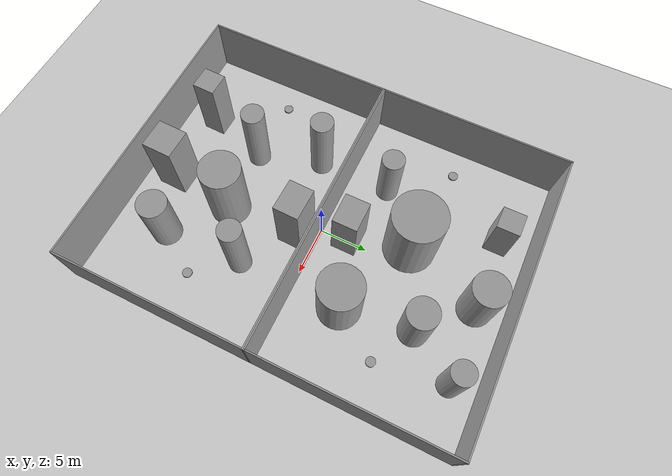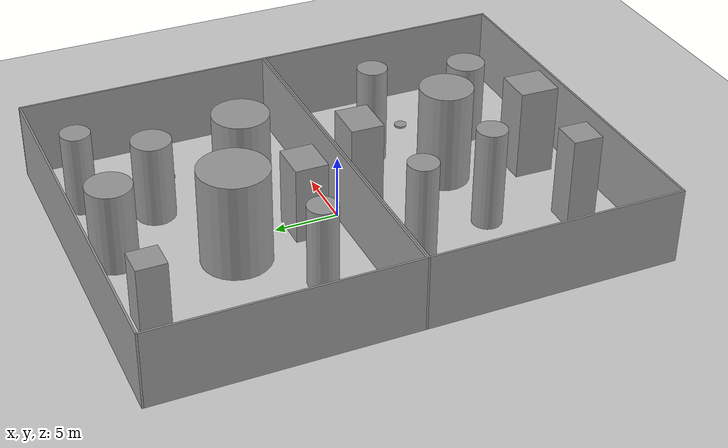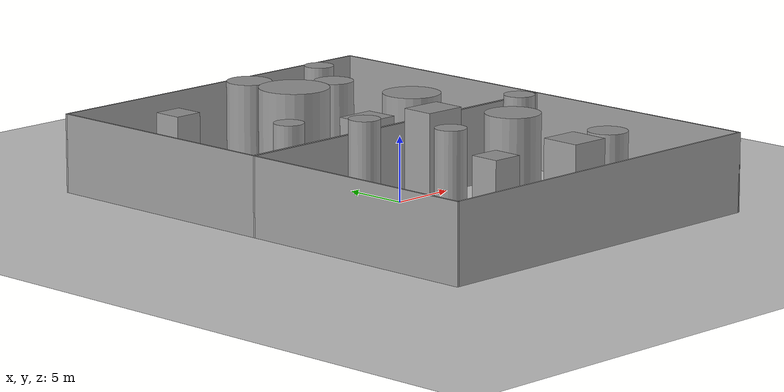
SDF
<sdf version="1.6">
 <world name="default">
  <light name="sun" type="directional">
   <pose>0 0 10 0 -0 0</pose>
   <diffuse>0.8 0.8 0.8 1</diffuse>
   <specular>0.2 0.2 0.2 1</specular>
   <attenuation>
    <range>1000</range>
    <constant>0.9</constant>
    <linear>0.01</linear>
    <quadratic>0.001</quadratic>
   </attenuation>
   <direction>-0.5 0.1 -0.9</direction>
  </light>
  <model name="ground_plane">
   <static>1</static>
   <link name="link">
    <collision name="collision">
     <geometry><plane><normal>0 0 1</normal><size>100 100</size></plane></geometry>
     <surface>
      <contact><collide_bitmask>65535</collide_bitmask></contact>
      <friction><ode><mu>100</mu><mu2>50</mu2></ode></friction>
     </surface>
    </collision>
    <visual name="visual">
     <cast_shadows>0</cast_shadows>
     <geometry><plane><normal>0 0 1</normal><size>100 100</size></plane></geometry>
     <material>
      <script><uri>file://media/materials/scripts/gazebo.material</uri><name>Gazebo/Grey</name></script>
     </material>
    </visual>
   </link>
  </model>
  <gravity>0 0 -9.8</gravity>
  <magnetic_field>6e-06 2.3e-05 -4.2e-05</magnetic_field>
  <atmosphere type="adiabatic"/>
  <physics name="default_physics" default="0" type="ode">
   <max_step_size>0.001</max_step_size>
   <real_time_factor>1</real_time_factor>
   <real_time_update_rate>1000</real_time_update_rate>
  </physics>
  <scene><ambient>0.4 0.4 0.4 1</ambient><background>0.7 0.7 0.7 1</background><shadows>1</shadows></scene>
  <spherical_coordinates>
   <surface_model>EARTH_WGS84</surface_model>
   <latitude_deg>0</latitude_deg>
   <longitude_deg>0</longitude_deg>
   <elevation>0</elevation>
   <heading_deg>0</heading_deg>
  </spherical_coordinates>
  <model name="simple_maze_2">
   <pose>0 10 0 0 -0 0</pose>
   <link name="Wall_10">
    <collision name="Wall_10_Collision">
     <geometry><box><size>30 0.15 6</size></box></geometry>
     <pose>0 0 3 0 -0 0</pose>
    </collision>
    <visual name="Wall_10_Visual">
     <pose>0 0 3 0 -0 0</pose>
     <geometry><box><size>30 0.15 6</size></box></geometry>
     <material>
      <script><uri>file://media/materials/scripts/gazebo.material</uri><name>Gazebo/Grey</name></script>
      <ambient>1 1 1 1</ambient>
     </material>
     <meta><layer>0</layer></meta>
    </visual>
    <pose>0 9.925 0 0 -0 3.14159</pose>
   </link>
   <link name="Wall_7">
    <collision name="Wall_7_Collision">
     <geometry><box><size>20 0.15 6</size></box></geometry>
     <pose>0 0 3 0 -0 0</pose>
    </collision>
    <visual name="Wall_7_Visual">
     <pose>0 0 3 0 -0 0</pose>
     <geometry><box><size>20 0.15 6</size></box></geometry>
     <material>
      <script><uri>file://media/materials/scripts/gazebo.material</uri><name>Gazebo/Grey</name></script>
      <ambient>1 1 1 1</ambient>
     </material>
     <meta><layer>0</layer></meta>
    </visual>
    <pose>-14.925 0 0 0 0 -1.5708</pose>
   </link>
   <link name="Wall_8">
    <collision name="Wall_8_Collision">
     <geometry><box><size>30 0.15 6</size></box></geometry>
     <pose>0 0 3 0 -0 0</pose>
    </collision>
    <visual name="Wall_8_Visual">
     <pose>0 0 3 0 -0 0</pose>
     <geometry><box><size>30 0.15 6</size></box></geometry>
     <material>
      <script><uri>file://media/materials/scripts/gazebo.material</uri><name>Gazebo/Grey</name></script>
      <ambient>1 1 1 1</ambient>
     </material>
     <meta><layer>0</layer></meta>
    </visual>
    <pose>0 -9.925 0 0 -0 0</pose>
   </link>
   <link name="Wall_9">
    <collision name="Wall_9_Collision">
     <geometry><box><size>20 0.15 6</size></box></geometry>
     <pose>0 0 3 0 -0 0</pose>
    </collision>
    <visual name="Wall_9_Visual">
     <pose>0 0 3 0 -0 0</pose>
     <geometry><box><size>20 0.15 6</size></box></geometry>
     <material>
      <script><uri>file://media/materials/scripts/gazebo.material</uri><name>Gazebo/Grey</name></script>
      <ambient>1 1 1 1</ambient>
     </material>
     <meta><layer>0</layer></meta>
    </visual>
    <pose>14.925 0 0 0 -0 1.5708</pose>
   </link>
   <static>1</static>
  </model>
  <model name="simple_maze_2_0">
   <pose>0 -10 0 0 -0 0</pose>
   <link name="Wall_10">
    <collision name="Wall_10_Collision">
     <geometry><box><size>30 0.15 6</size></box></geometry>
     <pose>0 0 3 0 -0 0</pose>
    </collision>
    <visual name="Wall_10_Visual">
     <pose>0 0 3 0 -0 0</pose>
     <geometry><box><size>30 0.15 6</size></box></geometry>
     <material>
      <script><uri>file://media/materials/scripts/gazebo.material</uri><name>Gazebo/Grey</name></script>
      <ambient>1 1 1 1</ambient>
     </material>
     <meta><layer>0</layer></meta>
    </visual>
    <pose>0 9.925 0 0 -0 3.14159</pose>
   </link>
   <link name="Wall_7">
    <collision name="Wall_7_Collision">
     <geometry><box><size>20 0.15 6</size></box></geometry>
     <pose>0 0 3 0 -0 0</pose>
    </collision>
    <visual name="Wall_7_Visual">
     <pose>0 0 3 0 -0 0</pose>
     <geometry><box><size>20 0.15 6</size></box></geometry>
     <material>
      <script><uri>file://media/materials/scripts/gazebo.material</uri><name>Gazebo/Grey</name></script>
      <ambient>1 1 1 1</ambient>
     </material>
     <meta><layer>0</layer></meta>
    </visual>
    <pose>-14.925 0 0 0 0 -1.5708</pose>
   </link>
   <link name="Wall_8">
    <collision name="Wall_8_Collision">
     <geometry><box><size>30 0.15 6</size></box></geometry>
     <pose>0 0 3 0 -0 0</pose>
    </collision>
    <visual name="Wall_8_Visual">
     <pose>0 0 3 0 -0 0</pose>
     <geometry><box><size>30 0.15 6</size></box></geometry>
     <material>
      <script><uri>file://media/materials/scripts/gazebo.material</uri><name>Gazebo/Grey</name></script>
      <ambient>1 1 1 1</ambient>
     </material>
     <meta><layer>0</layer></meta>
    </visual>
    <pose>0 -9.925 0 0 -0 0</pose>
   </link>
   <link name="Wall_9">
    <collision name="Wall_9_Collision">
     <geometry><box><size>20 0.15 6</size></box></geometry>
     <pose>0 0 3 0 -0 0</pose>
    </collision>
    <visual name="Wall_9_Visual">
     <pose>0 0 3 0 -0 0</pose>
     <geometry><box><size>20 0.15 6</size></box></geometry>
     <material>
      <script><uri>file://media/materials/scripts/gazebo.material</uri><name>Gazebo/Grey</name></script>
      <ambient>1 1 1 1</ambient>
     </material>
     <meta><layer>0</layer></meta>
    </visual>
    <pose>14.925 0 0 0 -0 1.5708</pose>
   </link>
   <static>1</static>
  </model>
  <model name="unit_cylinder_clone_1">
   <static>1</static>
   <pose>-2.17581 8.84407 3.86387 1e-06 1e-06 0.023536</pose>
   <link name="link">
    <inertial>
     <mass>1</mass>
     <inertia><ixx>0.145833</ixx><ixy>0</ixy><ixz>0</ixz><iyy>0.145833</iyy><iyz>0</iyz><izz>0.125</izz></inertia>
    </inertial>
    <collision name="collision">
     <geometry><cylinder><radius>2.68421</radius><length>7.72774</length></cylinder></geometry>
    </collision>
    <visual name="visual">
     <geometry><cylinder><radius>2.68421</radius><length>7.72774</length></cylinder></geometry>
     <material>
      <script><name>Gazebo/Grey</name><uri>file://media/materials/scripts/gazebo.material</uri></script>
     </material>
    </visual>
   </link>
  </model>
  <model name="unit_cylinder_clone_2">
   <static>1</static>
   <pose>-7.25059 4.2508 3.26003 1e-06 0 -0.035259</pose>
   <link name="link">
    <inertial>
     <mass>1</mass>
     <inertia><ixx>0.145833</ixx><ixy>0</ixy><ixz>0</ixz><iyy>0.145833</iyy><iyz>0</iyz><izz>0.125</izz></inertia>
    </inertial>
    <collision name="collision">
     <geometry><cylinder><radius>1.1544</radius><length>6.52009</length></cylinder></geometry>
    </collision>
    <visual name="visual">
     <geometry><cylinder><radius>1.1544</radius><length>6.52009</length></cylinder></geometry>
     <material>
      <script><name>Gazebo/Grey</name><uri>file://media/materials/scripts/gazebo.material</uri></script>
     </material>
    </visual>
   </link>
  </model>
  <model name="unit_cylinder_clone_3">
   <static>1</static>
   <pose>5.58911 12.4308 3.26004 0 -0 0.017367</pose>
   <link name="link">
    <inertial>
     <mass>1</mass>
     <inertia><ixx>0.145833</ixx><ixy>0</ixy><ixz>0</ixz><iyy>0.145833</iyy><iyz>0</iyz><izz>0.125</izz></inertia>
    </inertial>
    <collision name="collision">
     <geometry><cylinder><radius>1.53549</radius><length>6.52009</length></cylinder></geometry>
    </collision>
    <visual name="visual">
     <geometry><cylinder><radius>1.53549</radius><length>6.52009</length></cylinder></geometry>
     <material>
      <script><name>Gazebo/Grey</name><uri>file://media/materials/scripts/gazebo.material</uri></script>
     </material>
    </visual>
   </link>
  </model>
  <model name="unit_cylinder_clone_6">
   <static>1</static>
   <pose>1.00656 16.9672 3.26003 1e-06 -0 0.049673</pose>
   <link name="link">
    <inertial>
     <mass>1</mass>
     <inertia><ixx>0.145833</ixx><ixy>0</ixy><ixz>0</ixz><iyy>0.145833</iyy><iyz>0</iyz><izz>0.125</izz></inertia>
    </inertial>
    <collision name="collision">
     <geometry><cylinder><radius>1.74846</radius><length>6.52009</length></cylinder></geometry>
    </collision>
    <visual name="visual">
     <geometry><cylinder><radius>1.74846</radius><length>6.52009</length></cylinder></geometry>
     <material>
      <script><name>Gazebo/Grey</name><uri>file://media/materials/scripts/gazebo.material</uri></script>
     </material>
    </visual>
   </link>
  </model>
  <model name="unit_cylinder_clone_8">
   <static>1</static>
   <pose>6.55999 5.11192 3.26004 1e-06 -0 0.037575</pose>
   <link name="link">
    <inertial>
     <mass>1</mass>
     <inertia><ixx>0.145833</ixx><ixy>0</ixy><ixz>0</ixz><iyy>0.145833</iyy><iyz>0</iyz><izz>0.125</izz></inertia>
    </inertial>
    <collision name="collision">
     <geometry><cylinder><radius>2.2392</radius><length>6.52009</length></cylinder></geometry>
    </collision>
    <visual name="visual">
     <geometry><cylinder><radius>2.2392</radius><length>6.52009</length></cylinder></geometry>
     <material>
      <script><name>Gazebo/Grey</name><uri>file://media/materials/scripts/gazebo.material</uri></script>
     </material>
    </visual>
   </link>
  </model>
  <model name="unit_box_clone_clone">
   <static>1</static>
   <pose>-6.67041 16.7067 2.64317 0 -1e-06 0.001627</pose>
   <link name="link">
    <inertial>
     <mass>1</mass>
     <inertia>
      <ixx>0.166667</ixx>
      <ixy>0</ixy>
      <ixz>0</ixz>
      <iyy>0.166667</iyy>
      <iyz>0</iyz>
      <izz>0.166667</izz>
     </inertia>
    </inertial>
    <collision name="collision"><geometry><box><size>2.29874 2.30383 5.28633</size></box></geometry></collision>
    <visual name="visual">
     <geometry><box><size>2.29874 2.30383 5.28633</size></box></geometry>
     <material>
      <script><name>Gazebo/Grey</name><uri>file://media/materials/scripts/gazebo.material</uri></script>
     </material>
    </visual>
   </link>
  </model>
  <model name="unit_box_clone_clone_0">
   <static>1</static>
   <pose>-0.523484 2.86301 3.06037 0 0 -0.001132</pose>
   <link name="link">
    <inertial>
     <mass>1</mass>
     <inertia>
      <ixx>0.166667</ixx>
      <ixy>0</ixy>
      <ixz>0</ixz>
      <iyy>0.166667</iyy>
      <iyz>0</iyz>
      <izz>0.166667</izz>
     </inertia>
    </inertial>
    <collision name="collision"><geometry><box><size>3.1048 2.56738 6.12072</size></box></geometry></collision>
    <visual name="visual">
     <geometry><box><size>3.1048 2.56738 6.12072</size></box></geometry>
     <material>
      <script><name>Gazebo/Grey</name><uri>file://media/materials/scripts/gazebo.material</uri></script>
     </material>
    </visual>
   </link>
  </model>
  <model name="unit_cylinder_0_clone">
   <static>1</static>
   <pose>-12 10 0.078634 -2e-06 -5e-06 -0.386157</pose>
   <link name="link">
    <inertial>
     <mass>1</mass>
     <inertia><ixx>0.145833</ixx><ixy>0</ixy><ixz>0</ixz><iyy>0.145833</iyy><iyz>0</iyz><izz>0.125</izz></inertia>
    </inertial>
    <collision name="collision">
     <geometry><cylinder><radius>0.5</radius><length>0.157277</length></cylinder></geometry>
    </collision>
    <visual name="visual">
     <geometry><cylinder><radius>0.5</radius><length>0.157277</length></cylinder></geometry>
     <material>
      <script><name>Gazebo/Grey</name><uri>file://media/materials/scripts/gazebo.material</uri></script>
     </material>
    </visual>
   </link>
  </model>
  <model name="unit_cylinder_clone_0_clone_0">
   <static>1</static>
   <pose>7.00077 -14.1685 3.26004 0 -0 0.042664</pose>
   <link name="link">
    <inertial>
     <mass>1</mass>
     <inertia><ixx>0.145833</ixx><ixy>0</ixy><ixz>0</ixz><iyy>0.145833</iyy><iyz>0</iyz><izz>0.125</izz></inertia>
    </inertial>
    <collision name="collision">
     <geometry><cylinder><radius>1.51297</radius><length>6.52009</length></cylinder></geometry>
    </collision>
    <visual name="visual">
     <geometry><cylinder><radius>1.51297</radius><length>6.52009</length></cylinder></geometry>
     <material>
      <script><name>Gazebo/Grey</name><uri>file://media/materials/scripts/gazebo.material</uri></script>
     </material>
    </visual>
   </link>
  </model>
  <model name="unit_cylinder_0_clone_0">
   <static>1</static>
   <pose>10 -10 0.078638 0 -0 4e-06</pose>
   <link name="link">
    <inertial>
     <mass>1</mass>
     <inertia><ixx>0.145833</ixx><ixy>0</ixy><ixz>0</ixz><iyy>0.145833</iyy><iyz>0</iyz><izz>0.125</izz></inertia>
    </inertial>
    <collision name="collision">
     <geometry><cylinder><radius>0.5</radius><length>0.157277</length></cylinder></geometry>
    </collision>
    <visual name="visual">
     <geometry><cylinder><radius>0.5</radius><length>0.157277</length></cylinder></geometry>
     <material>
      <script><name>Gazebo/Grey</name><uri>file://media/materials/scripts/gazebo.material</uri></script>
     </material>
    </visual>
   </link>
  </model>
  <model name="unit_cylinder_0_clone_0_clone">
   <static>1</static>
   <pose>-12 -10 0.078638 0 -0 4e-06</pose>
   <link name="link">
    <inertial>
     <mass>1</mass>
     <inertia><ixx>0.145833</ixx><ixy>0</ixy><ixz>0</ixz><iyy>0.145833</iyy><iyz>0</iyz><izz>0.125</izz></inertia>
    </inertial>
    <collision name="collision">
     <geometry><cylinder><radius>0.5</radius><length>0.157277</length></cylinder></geometry>
    </collision>
    <visual name="visual">
     <geometry><cylinder><radius>0.5</radius><length>0.157277</length></cylinder></geometry>
     <material>
      <script><name>Gazebo/Grey</name><uri>file://media/materials/scripts/gazebo.material</uri></script>
     </material>
    </visual>
   </link>
  </model>
  <model name="unit_cylinder_0_clone_clone">
   <static>1</static>
   <pose>10 10 0.078638 -2e-06 1e-06 -0.386157</pose>
   <link name="link">
    <inertial>
     <mass>1</mass>
     <inertia><ixx>0.145833</ixx><ixy>0</ixy><ixz>0</ixz><iyy>0.145833</iyy><iyz>0</iyz><izz>0.125</izz></inertia>
    </inertial>
    <collision name="collision">
     <geometry><cylinder><radius>0.5</radius><length>0.157277</length></cylinder></geometry>
    </collision>
    <visual name="visual">
     <geometry><cylinder><radius>0.5</radius><length>0.157277</length></cylinder></geometry>
     <material>
      <script><name>Gazebo/Grey</name><uri>file://media/materials/scripts/gazebo.material</uri></script>
     </material>
    </visual>
   </link>
  </model>
  <model name="unit_cylinder_clone_4_clone_clone">
   <static>1</static>
   <pose>-7.16185 -3.4093 4.0002 0 0 -0.162044</pose>
   <link name="link">
    <inertial>
     <mass>1</mass>
     <inertia><ixx>0.145833</ixx><ixy>0</ixy><ixz>0</ixz><iyy>0.145833</iyy><iyz>0</iyz><izz>0.125</izz></inertia>
    </inertial>
    <collision name="collision">
     <geometry><cylinder><radius>1.17555</radius><length>8.00041</length></cylinder></geometry>
    </collision>
    <visual name="visual">
     <geometry><cylinder><radius>1.17555</radius><length>8.00041</length></cylinder></geometry>
     <material>
      <script><name>Gazebo/Grey</name><uri>file://media/materials/scripts/gazebo.material</uri></script>
     </material>
    </visual>
   </link>
  </model>
  <model name="unit_cylinder_clone_4_clone_clone_clone">
   <static>1</static>
   <pose>-5.08691 -9.95409 4.00019 1e-06 1e-06 -0.166762</pose>
   <link name="link">
    <inertial>
     <mass>1</mass>
     <inertia><ixx>0.145833</ixx><ixy>0</ixy><ixz>0</ixz><iyy>0.145833</iyy><iyz>0</iyz><izz>0.125</izz></inertia>
    </inertial>
    <collision name="collision">
     <geometry><cylinder><radius>1.17555</radius><length>8.00041</length></cylinder></geometry>
    </collision>
    <visual name="visual">
     <geometry><cylinder><radius>1.17555</radius><length>8.00041</length></cylinder></geometry>
     <material>
      <script><name>Gazebo/Grey</name><uri>file://media/materials/scripts/gazebo.material</uri></script>
     </material>
    </visual>
   </link>
  </model>
  <model name="unit_cylinder_clone_4_clone_clone_clone_0">
   <static>1</static>
   <pose>1.69563 -9.70417 4.0002 1e-06 1e-06 -0.157795</pose>
   <link name="link">
    <inertial>
     <mass>1</mass>
     <inertia><ixx>0.145833</ixx><ixy>0</ixy><ixz>0</ixz><iyy>0.145833</iyy><iyz>0</iyz><izz>0.125</izz></inertia>
    </inertial>
    <collision name="collision">
     <geometry><cylinder><radius>2.08162</radius><length>8.00041</length></cylinder></geometry>
    </collision>
    <visual name="visual">
     <geometry><cylinder><radius>2.08162</radius><length>8.00041</length></cylinder></geometry>
     <material>
      <script><name>Gazebo/Grey</name><uri>file://media/materials/scripts/gazebo.material</uri></script>
     </material>
    </visual>
   </link>
  </model>
  <model name="unit_box_clone_0_clone_clone">
   <static>1</static>
   <pose>-7.08689 -16.1751 3.65803 -0 1e-06 -0.024925</pose>
   <link name="link">
    <inertial>
     <mass>1</mass>
     <inertia>
      <ixx>0.166667</ixx>
      <ixy>0</ixy>
      <ixz>0</ixz>
      <iyy>0.166667</iyy>
      <iyz>0</iyz>
      <izz>0.166667</izz>
     </inertia>
    </inertial>
    <collision name="collision"><geometry><box><size>2.36327 2.3176 7.31607</size></box></geometry></collision>
    <visual name="visual">
     <geometry><box><size>2.36327 2.3176 7.31607</size></box></geometry>
     <material>
      <script><name>Gazebo/Grey</name><uri>file://media/materials/scripts/gazebo.material</uri></script>
     </material>
    </visual>
   </link>
  </model>
  <model name="unit_box_clone_0_clone_clone_0">
   <static>1</static>
   <pose>0.777743 -16.494 3.65803 1e-06 -0 -0.024812</pose>
   <link name="link">
    <inertial>
     <mass>1</mass>
     <inertia>
      <ixx>0.166667</ixx>
      <ixy>0</ixy>
      <ixz>0</ixz>
      <iyy>0.166667</iyy>
      <iyz>0</iyz>
      <izz>0.166667</izz>
     </inertia>
    </inertial>
    <collision name="collision"><geometry><box><size>3.04072 3.08787 7.31607</size></box></geometry></collision>
    <visual name="visual">
     <geometry><box><size>3.04072 3.08787 7.31607</size></box></geometry>
     <material>
      <script><name>Gazebo/Grey</name><uri>file://media/materials/scripts/gazebo.material</uri></script>
     </material>
    </visual>
   </link>
  </model>
  <model name="unit_box_clone_0_clone_clone_1">
   <static>1</static>
   <pose>1.15921 -2.26687 3.65803 1e-06 0 -0.024769</pose>
   <link name="link">
    <inertial>
     <mass>1</mass>
     <inertia>
      <ixx>0.166667</ixx>
      <ixy>0</ixy>
      <ixz>0</ixz>
      <iyy>0.166667</iyy>
      <iyz>0</iyz>
      <izz>0.166667</izz>
     </inertia>
    </inertial>
    <collision name="collision"><geometry><box><size>3.28525 2.58185 7.31607</size></box></geometry></collision>
    <visual name="visual">
     <geometry><box><size>3.28525 2.58185 7.31607</size></box></geometry>
     <material>
      <script><name>Gazebo/Grey</name><uri>file://media/materials/scripts/gazebo.material</uri></script>
     </material>
    </visual>
   </link>
  </model>
  <model name="unit_cylinder_clone_4_clone_clone_clone_clone">
   <static>1</static>
   <pose>6.64353 -5.80462 4.00019 1e-06 1e-06 -0.166762</pose>
   <link name="link">
    <inertial>
     <mass>1</mass>
     <inertia><ixx>0.145833</ixx><ixy>0</ixy><ixz>0</ixz><iyy>0.145833</iyy><iyz>0</iyz><izz>0.125</izz></inertia>
    </inertial>
    <collision name="collision">
     <geometry><cylinder><radius>1.17555</radius><length>8.00041</length></cylinder></geometry>
    </collision>
    <visual name="visual">
     <geometry><cylinder><radius>1.17555</radius><length>8.00041</length></cylinder></geometry>
     <material>
      <script><name>Gazebo/Grey</name><uri>file://media/materials/scripts/gazebo.material</uri></script>
     </material>
    </visual>
   </link>
  </model>
  <model name="unit_cylinder_clone_2_clone">
   <static>1</static>
   <pose>8.79211 17.2427 3.26003 1e-06 0 -0.035259</pose>
   <link name="link">
    <inertial>
     <mass>1</mass>
     <inertia><ixx>0.145833</ixx><ixy>0</ixy><ixz>0</ixz><iyy>0.145833</iyy><iyz>0</iyz><izz>0.125</izz></inertia>
    </inertial>
    <collision name="collision">
     <geometry><cylinder><radius>1.1544</radius><length>6.52009</length></cylinder></geometry>
    </collision>
    <visual name="visual">
     <geometry><cylinder><radius>1.1544</radius><length>6.52009</length></cylinder></geometry>
     <material>
      <script><name>Gazebo/Grey</name><uri>file://media/materials/scripts/gazebo.material</uri></script>
     </material>
    </visual>
   </link>
  </model>
 </world>
</sdf>
